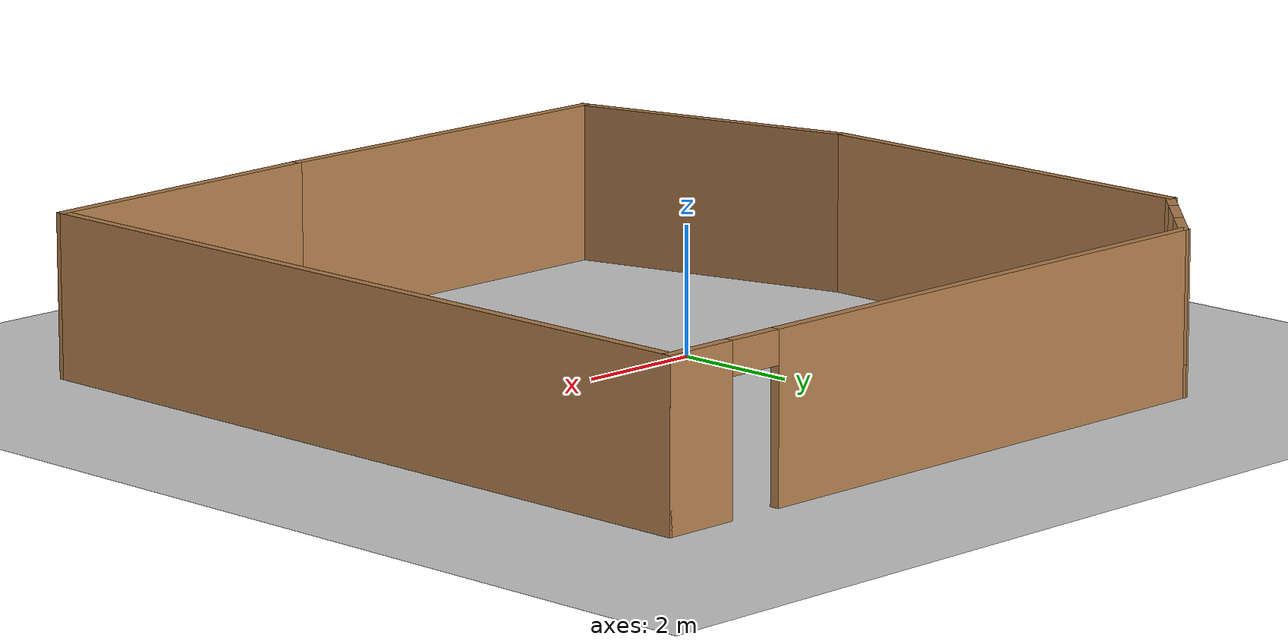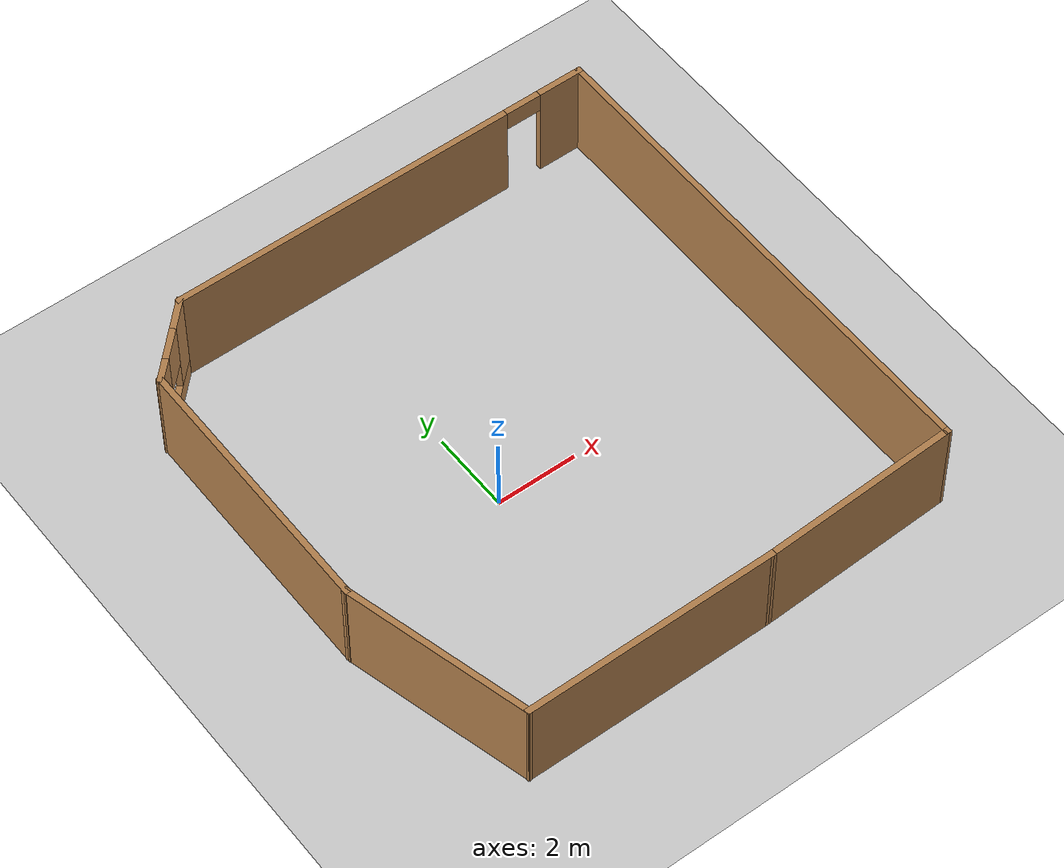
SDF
<sdf version="1.7">
 <world name="default">
  <light name="sun" type="directional">
   <pose>0 0 10 0 -0 0</pose>
   <diffuse>0.8 0.8 0.8 1</diffuse>
   <specular>0.2 0.2 0.2 1</specular>
   <attenuation>
    <range>1000</range>
    <constant>0.9</constant>
    <linear>0.01</linear>
    <quadratic>0.001</quadratic>
   </attenuation>
   <direction>-0.5 0.1 -0.9</direction>
   <spot><inner_angle>0</inner_angle><outer_angle>0</outer_angle><falloff>0</falloff></spot>
  </light>
  <model name="ground_plane">
   <static>1</static>
   <link name="link">
    <collision name="collision">
     <geometry><plane><normal>0 0 1</normal><size>100 100</size></plane></geometry>
     <surface>
      <contact><collide_bitmask>65535</collide_bitmask></contact>
      <friction><ode><mu>100</mu><mu2>50</mu2></ode></friction>
     </surface>
    </collision>
    <visual name="visual">
     <cast_shadows>0</cast_shadows>
     <geometry><plane><normal>0 0 1</normal><size>100 100</size></plane></geometry>
     <material>
      <script><uri>file://media/materials/scripts/gazebo.material</uri><name>Gazebo/Grey</name></script>
     </material>
    </visual>
   </link>
  </model>
  <gravity>0 0 -9.8</gravity>
  <magnetic_field>6e-06 2.3e-05 -4.2e-05</magnetic_field>
  <atmosphere type="adiabatic"/>
  <physics type="ode">
   <max_step_size>0.001</max_step_size>
   <real_time_factor>1</real_time_factor>
   <real_time_update_rate>1000</real_time_update_rate>
  </physics>
  <scene><ambient>0.4 0.4 0.4 1</ambient><background>0.7 0.7 0.7 1</background><shadows>1</shadows></scene>
  <audio><device>default</device></audio>
  <spherical_coordinates>
   <surface_model>EARTH_WGS84</surface_model>
   <latitude_deg>0</latitude_deg>
   <longitude_deg>0</longitude_deg>
   <elevation>0</elevation>
   <heading_deg>0</heading_deg>
  </spherical_coordinates>
  <model name="my_building">
   <pose>1.30257 0.561307 0 0 -0 0</pose>
   <link name="Wall_10">
    <pose>-5.28583 5.51452 0 0 -0 0.785398</pose>
    <visual name="Wall_10_Visual_0">
     <pose>-0.81613 0 1.25 0 -0 0</pose>
     <geometry><box><size>0.617739 0.15 2.5</size></box></geometry>
     <material>
      <script><uri>file://media/materials/scripts/gazebo.material</uri><name>Gazebo/Wood</name></script>
      <ambient>1 1 1 1</ambient>
     </material>
     <meta><layer>0</layer></meta>
    </visual>
    <collision name="Wall_10_Collision_0">
     <geometry><box><size>0.617739 0.15 2.5</size></box></geometry>
     <pose>-0.81613 0 1.25 0 -0 0</pose>
    </collision>
    <visual name="Wall_10_Visual_1">
     <pose>0.30887 0 0.25 0 -0 0</pose>
     <geometry><box><size>1.63226 0.15 0.5</size></box></geometry>
     <material>
      <script><uri>file://media/materials/scripts/gazebo.material</uri><name>Gazebo/Wood</name></script>
      <ambient>1 1 1 1</ambient>
     </material>
     <meta><layer>0</layer></meta>
    </visual>
    <collision name="Wall_10_Collision_1">
     <geometry><box><size>1.63226 0.15 0.5</size></box></geometry>
     <pose>0.30887 0 0.25 0 -0 0</pose>
    </collision>
    <visual name="Wall_10_Visual_2">
     <pose>0.70887 0 1.5 0 -0 0</pose>
     <geometry><box><size>0.832261 0.15 2</size></box></geometry>
     <material>
      <script><uri>file://media/materials/scripts/gazebo.material</uri><name>Gazebo/Wood</name></script>
      <ambient>1 1 1 1</ambient>
     </material>
     <meta><layer>0</layer></meta>
    </visual>
    <collision name="Wall_10_Collision_2">
     <geometry><box><size>0.832261 0.15 2</size></box></geometry>
     <pose>0.70887 0 1.5 0 -0 0</pose>
    </collision>
    <visual name="Wall_10_Visual_3">
     <pose>-0.107261 0 1.9 0 -0 0</pose>
     <geometry><box><size>0.8 0.15 1.2</size></box></geometry>
     <material>
      <script><uri>file://media/materials/scripts/gazebo.material</uri><name>Gazebo/Wood</name></script>
      <ambient>1 1 1 1</ambient>
     </material>
     <meta><layer>0</layer></meta>
    </visual>
    <collision name="Wall_10_Collision_3">
     <geometry><box><size>0.8 0.15 1.2</size></box></geometry>
     <pose>-0.107261 0 1.9 0 -0 0</pose>
    </collision>
   </link>
   <link name="Wall_11">
    <pose>0.756628 6.25699 0 0 -0 0</pose>
    <visual name="Wall_11_Visual_0">
     <pose>-1.05149 0 1.25 0 -0 0</pose>
     <geometry><box><size>8.64703 0.15 2.5</size></box></geometry>
     <material>
      <script><uri>file://media/materials/scripts/gazebo.material</uri><name>Gazebo/Wood</name></script>
      <ambient>0.996078 0.47451 0.0196078 1</ambient>
     </material>
     <meta><layer>0</layer></meta>
    </visual>
    <collision name="Wall_11_Collision_0">
     <geometry><box><size>8.64703 0.15 2.5</size></box></geometry>
     <pose>-1.05149 0 1.25 0 -0 0</pose>
    </collision>
    <visual name="Wall_11_Visual_1">
     <pose>4.77351 0 1.25 0 -0 0</pose>
     <geometry><box><size>1.20297 0.15 2.5</size></box></geometry>
     <material>
      <script><uri>file://media/materials/scripts/gazebo.material</uri><name>Gazebo/Wood</name></script>
      <ambient>0.996078 0.47451 0.0196078 1</ambient>
     </material>
     <meta><layer>0</layer></meta>
    </visual>
    <collision name="Wall_11_Collision_1">
     <geometry><box><size>1.20297 0.15 2.5</size></box></geometry>
     <pose>4.77351 0 1.25 0 -0 0</pose>
    </collision>
    <visual name="Wall_11_Visual_2">
     <pose>3.72203 0 2.25 0 -0 0</pose>
     <geometry><box><size>0.9 0.15 0.5</size></box></geometry>
     <material>
      <script><uri>file://media/materials/scripts/gazebo.material</uri><name>Gazebo/Wood</name></script>
      <ambient>0.996078 0.47451 0.0196078 1</ambient>
     </material>
     <meta><layer>0</layer></meta>
    </visual>
    <collision name="Wall_11_Collision_2">
     <geometry><box><size>0.9 0.15 0.5</size></box></geometry>
     <pose>3.72203 0 2.25 0 -0 0</pose>
    </collision>
   </link>
   <link name="Wall_12">
    <collision name="Wall_12_Collision">
     <geometry><box><size>12.5 0.15 2.5</size></box></geometry>
     <pose>0 0 1.25 0 -0 0</pose>
    </collision>
    <visual name="Wall_12_Visual">
     <pose>0 0 1.25 0 -0 0</pose>
     <geometry><box><size>12.5 0.15 2.5</size></box></geometry>
     <material>
      <script><uri>file://media/materials/scripts/gazebo.material</uri><name>Gazebo/Wood</name></script>
      <ambient>1 1 1 1</ambient>
     </material>
     <meta><layer>0</layer></meta>
    </visual>
    <pose>6.05663 0.081986 0 0 -0 -1.5708</pose>
   </link>
   <link name="Wall_13">
    <collision name="Wall_13_Collision">
     <geometry><box><size>4.94767 0.15 2.5</size></box></geometry>
     <pose>0 0 1.25 0 -0 0</pose>
    </collision>
    <visual name="Wall_13_Visual">
     <pose>0 0 1.25 0 -0 0</pose>
     <geometry><box><size>4.94767 0.15 2.5</size></box></geometry>
     <material>
      <script><uri>file://media/materials/scripts/gazebo.material</uri><name>Gazebo/Wood</name></script>
      <ambient>1 1 1 1</ambient>
     </material>
     <meta><layer>0</layer></meta>
    </visual>
    <pose>3.65945 -6.18211 0 0 -0 -3.10445</pose>
   </link>
   <link name="Wall_7">
    <collision name="Wall_7_Collision">
     <geometry><box><size>6.25 0.15 2.5</size></box></geometry>
     <pose>0 0 1.25 0 -0 0</pose>
    </collision>
    <visual name="Wall_7_Visual">
     <pose>0 0 1.25 0 -0 0</pose>
     <geometry><box><size>6.25 0.15 2.5</size></box></geometry>
     <material>
      <script><uri>file://media/materials/scripts/gazebo.material</uri><name>Gazebo/Wood</name></script>
      <ambient>1 1 1 1</ambient>
     </material>
     <meta><layer>0</layer></meta>
    </visual>
    <pose>-1.78773 -6.2712 0 0 -0 3.14159</pose>
   </link>
   <link name="Wall_8">
    <collision name="Wall_8_Collision">
     <geometry><box><size>4.75 0.15 2.5</size></box></geometry>
     <pose>0 0 1.25 0 -0 0</pose>
    </collision>
    <visual name="Wall_8_Visual">
     <pose>0 0 1.25 0 -0 0</pose>
     <geometry><box><size>4.75 0.15 2.5</size></box></geometry>
     <material>
      <script><uri>file://media/materials/scripts/gazebo.material</uri><name>Gazebo/Wood</name></script>
      <ambient>1 1 1 1</ambient>
     </material>
     <meta><layer>0</layer></meta>
    </visual>
    <pose>-5.43301 -4.04957 0 0 -0 1.8326</pose>
   </link>
   <link name="Wall_9">
    <collision name="Wall_9_Collision">
     <geometry><box><size>6.75 0.15 2.5</size></box></geometry>
     <pose>0 0 1.25 0 -0 0</pose>
    </collision>
    <visual name="Wall_9_Visual">
     <pose>0 0 1.25 0 -0 0</pose>
     <geometry><box><size>6.75 0.15 2.5</size></box></geometry>
     <material>
      <script><uri>file://media/materials/scripts/gazebo.material</uri><name>Gazebo/Wood</name></script>
      <ambient>0.996078 0.47451 0.0196078 1</ambient>
     </material>
     <meta><layer>0</layer></meta>
    </visual>
    <pose>-6.0283 1.47206 0 0 -0 1.5708</pose>
   </link>
   <static>1</static>
  </model>
 </world>
</sdf>
